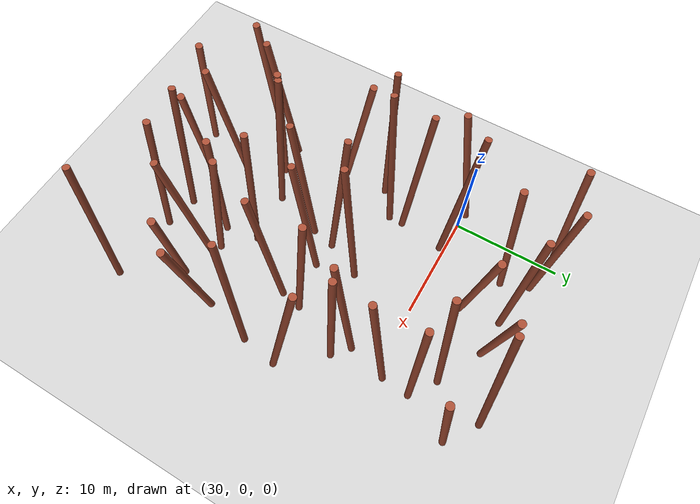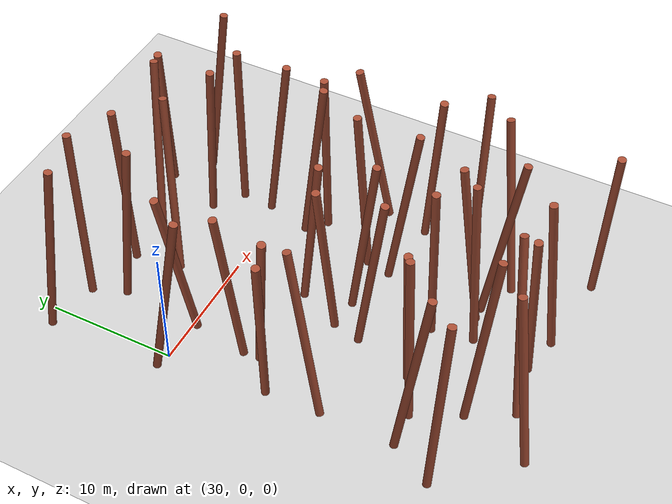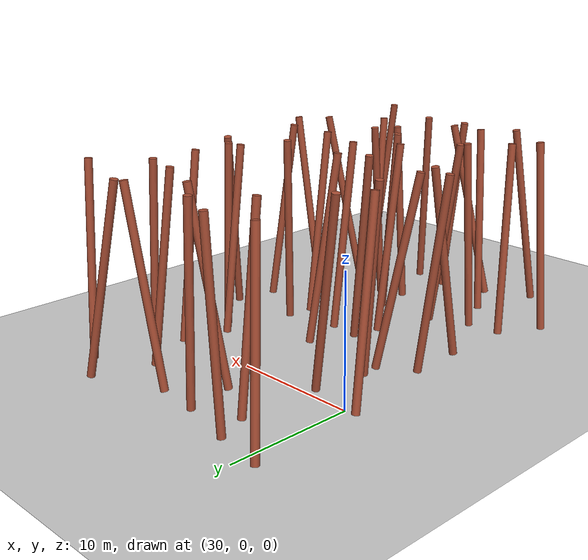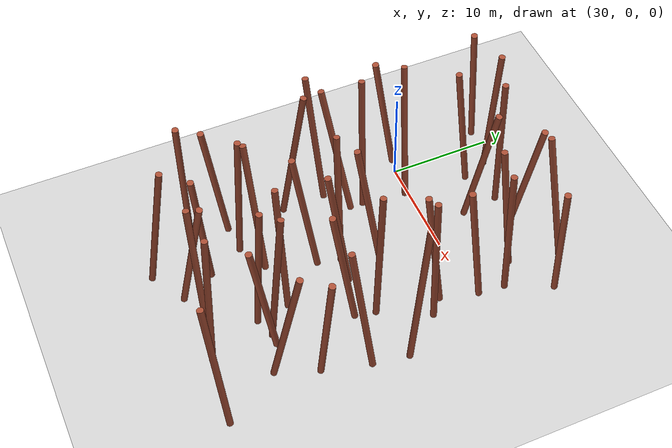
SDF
<sdf version="1.5">
 <world name="default">
  <include><uri>model://sun</uri></include>
  <include><uri>model://ground_plane</uri></include>
  <include><uri>model://asphalt_plane</uri><pose>0 0 -0.000001 0 0 0</pose></include>
  <model name="unit_cylinder_133">
   <pose>29.18419 -21.05023 7.70000 0.00792 0.08452 0.00000</pose>
   <gravity>0 0 0</gravity>
   <link name="link">
    <inertial>
     <mass>100</mass>
     <inertia><ixx>20</ixx><ixy>0</ixy><ixz>0</ixz><iyy>20</iyy><iyz>0</iyz><izz>20</izz></inertia>
    </inertial>
    <collision name="collision">
     <geometry><cylinder><radius>0.300</radius><length>15.000</length></cylinder></geometry>
    </collision>
    <visual name="visual">
     <geometry><cylinder><radius>0.300</radius><length>15.000</length></cylinder></geometry>
     <material>
      <script><name>Gazebo/Bricks</name><uri>file://media/materials/scripts/gazebo.material</uri></script>
     </material>
    </visual>
    <kinematic>1</kinematic>
   </link>
   <static>0</static>
   <plugin name="dynamic_obstacle_motion_133" filename="libobstaclePathPlugin.so">
    <motion_type>proximity_linear</motion_type>
    <direction>-0.999534108 -0.030521569 0.000000000</direction>
    <velocity>0.507010711</velocity>
    <activation_distance>20.000000000</activation_distance>
    <activation_model>iris</activation_model>
    <orientation>false</orientation>
    <marker_enabled>true</marker_enabled>
    <marker_id>133</marker_id>
    <marker_radius>0.300000000</marker_radius>
    <marker_height>15.000000000</marker_height>
    <marker_rate>20.0</marker_rate>
    <marker_topic>/uav_simulator/dynamic_obstacles</marker_topic>
    <marker_frame>map</marker_frame>
   </plugin>
  </model>
  <model name="unit_cylinder_136">
   <pose>29.39386 -8.16290 7.70000 0.04953 -0.11424 0.00000</pose>
   <gravity>0 0 0</gravity>
   <link name="link">
    <inertial>
     <mass>100</mass>
     <inertia><ixx>20</ixx><ixy>0</ixy><ixz>0</ixz><iyy>20</iyy><iyz>0</iyz><izz>20</izz></inertia>
    </inertial>
    <collision name="collision">
     <geometry><cylinder><radius>0.300</radius><length>15.000</length></cylinder></geometry>
    </collision>
    <visual name="visual">
     <geometry><cylinder><radius>0.300</radius><length>15.000</length></cylinder></geometry>
     <material>
      <script><name>Gazebo/Bricks</name><uri>file://media/materials/scripts/gazebo.material</uri></script>
     </material>
    </visual>
   </link>
   <static>1</static>
  </model>
  <model name="unit_cylinder_138">
   <pose>29.09720 -0.91014 7.70000 0.15352 0.04506 0.00000</pose>
   <gravity>0 0 0</gravity>
   <link name="link">
    <inertial>
     <mass>100</mass>
     <inertia><ixx>20</ixx><ixy>0</ixy><ixz>0</ixz><iyy>20</iyy><iyz>0</iyz><izz>20</izz></inertia>
    </inertial>
    <collision name="collision">
     <geometry><cylinder><radius>0.300</radius><length>15.000</length></cylinder></geometry>
    </collision>
    <visual name="visual">
     <geometry><cylinder><radius>0.300</radius><length>15.000</length></cylinder></geometry>
     <material>
      <script><name>Gazebo/Bricks</name><uri>file://media/materials/scripts/gazebo.material</uri></script>
     </material>
    </visual>
   </link>
   <static>1</static>
  </model>
  <model name="unit_cylinder_140">
   <pose>29.12133 8.48860 7.70000 0.09487 0.07396 0.00000</pose>
   <gravity>0 0 0</gravity>
   <link name="link">
    <inertial>
     <mass>100</mass>
     <inertia><ixx>20</ixx><ixy>0</ixy><ixz>0</ixz><iyy>20</iyy><iyz>0</iyz><izz>20</izz></inertia>
    </inertial>
    <collision name="collision">
     <geometry><cylinder><radius>0.300</radius><length>15.000</length></cylinder></geometry>
    </collision>
    <visual name="visual">
     <geometry><cylinder><radius>0.300</radius><length>15.000</length></cylinder></geometry>
     <material>
      <script><name>Gazebo/Bricks</name><uri>file://media/materials/scripts/gazebo.material</uri></script>
     </material>
    </visual>
    <kinematic>1</kinematic>
   </link>
   <static>0</static>
   <plugin name="dynamic_obstacle_motion_140" filename="libobstaclePathPlugin.so">
    <motion_type>proximity_linear</motion_type>
    <direction>-0.758222801 0.651995540 0.000000000</direction>
    <velocity>0.456724164</velocity>
    <activation_distance>20.000000000</activation_distance>
    <activation_model>iris</activation_model>
    <orientation>false</orientation>
    <marker_enabled>true</marker_enabled>
    <marker_id>140</marker_id>
    <marker_radius>0.300000000</marker_radius>
    <marker_height>15.000000000</marker_height>
    <marker_rate>20.0</marker_rate>
    <marker_topic>/uav_simulator/dynamic_obstacles</marker_topic>
    <marker_frame>map</marker_frame>
   </plugin>
  </model>
  <model name="unit_cylinder_147">
   <pose>33.50892 -25.04031 7.70000 -0.14880 0.06397 0.00000</pose>
   <gravity>0 0 0</gravity>
   <link name="link">
    <inertial>
     <mass>100</mass>
     <inertia><ixx>20</ixx><ixy>0</ixy><ixz>0</ixz><iyy>20</iyy><iyz>0</iyz><izz>20</izz></inertia>
    </inertial>
    <collision name="collision">
     <geometry><cylinder><radius>0.300</radius><length>15.000</length></cylinder></geometry>
    </collision>
    <visual name="visual">
     <geometry><cylinder><radius>0.300</radius><length>15.000</length></cylinder></geometry>
     <material>
      <script><name>Gazebo/Bricks</name><uri>file://media/materials/scripts/gazebo.material</uri></script>
     </material>
    </visual>
    <kinematic>1</kinematic>
   </link>
   <static>0</static>
   <plugin name="dynamic_obstacle_motion_147" filename="libobstaclePathPlugin.so">
    <motion_type>proximity_linear</motion_type>
    <direction>0.788737863 0.614729684 0.000000000</direction>
    <velocity>0.640101887</velocity>
    <activation_distance>20.000000000</activation_distance>
    <activation_model>iris</activation_model>
    <orientation>false</orientation>
    <marker_enabled>true</marker_enabled>
    <marker_id>147</marker_id>
    <marker_radius>0.300000000</marker_radius>
    <marker_height>15.000000000</marker_height>
    <marker_rate>20.0</marker_rate>
    <marker_topic>/uav_simulator/dynamic_obstacles</marker_topic>
    <marker_frame>map</marker_frame>
   </plugin>
  </model>
  <model name="unit_cylinder_148">
   <pose>30.73118 -18.48692 7.70000 0.10446 0.04949 0.00000</pose>
   <gravity>0 0 0</gravity>
   <link name="link">
    <inertial>
     <mass>100</mass>
     <inertia><ixx>20</ixx><ixy>0</ixy><ixz>0</ixz><iyy>20</iyy><iyz>0</iyz><izz>20</izz></inertia>
    </inertial>
    <collision name="collision">
     <geometry><cylinder><radius>0.300</radius><length>15.000</length></cylinder></geometry>
    </collision>
    <visual name="visual">
     <geometry><cylinder><radius>0.300</radius><length>15.000</length></cylinder></geometry>
     <material>
      <script><name>Gazebo/Bricks</name><uri>file://media/materials/scripts/gazebo.material</uri></script>
     </material>
    </visual>
   </link>
   <static>1</static>
  </model>
  <model name="unit_cylinder_149">
   <pose>33.24025 -17.14726 7.70000 -0.05416 0.02086 0.00000</pose>
   <gravity>0 0 0</gravity>
   <link name="link">
    <inertial>
     <mass>100</mass>
     <inertia><ixx>20</ixx><ixy>0</ixy><ixz>0</ixz><iyy>20</iyy><iyz>0</iyz><izz>20</izz></inertia>
    </inertial>
    <collision name="collision">
     <geometry><cylinder><radius>0.300</radius><length>15.000</length></cylinder></geometry>
    </collision>
    <visual name="visual">
     <geometry><cylinder><radius>0.300</radius><length>15.000</length></cylinder></geometry>
     <material>
      <script><name>Gazebo/Bricks</name><uri>file://media/materials/scripts/gazebo.material</uri></script>
     </material>
    </visual>
    <kinematic>1</kinematic>
   </link>
   <static>0</static>
   <plugin name="dynamic_obstacle_motion_149" filename="libobstaclePathPlugin.so">
    <motion_type>proximity_linear</motion_type>
    <direction>0.960768522 0.277351487 0.000000000</direction>
    <velocity>0.514663506</velocity>
    <activation_distance>20.000000000</activation_distance>
    <activation_model>iris</activation_model>
    <orientation>false</orientation>
    <marker_enabled>true</marker_enabled>
    <marker_id>149</marker_id>
    <marker_radius>0.300000000</marker_radius>
    <marker_height>15.000000000</marker_height>
    <marker_rate>20.0</marker_rate>
    <marker_topic>/uav_simulator/dynamic_obstacles</marker_topic>
    <marker_frame>map</marker_frame>
   </plugin>
  </model>
  <model name="unit_cylinder_150">
   <pose>30.50218 -10.80302 7.70000 -0.16702 0.02187 0.00000</pose>
   <gravity>0 0 0</gravity>
   <link name="link">
    <inertial>
     <mass>100</mass>
     <inertia><ixx>20</ixx><ixy>0</ixy><ixz>0</ixz><iyy>20</iyy><iyz>0</iyz><izz>20</izz></inertia>
    </inertial>
    <collision name="collision">
     <geometry><cylinder><radius>0.300</radius><length>15.000</length></cylinder></geometry>
    </collision>
    <visual name="visual">
     <geometry><cylinder><radius>0.300</radius><length>15.000</length></cylinder></geometry>
     <material>
      <script><name>Gazebo/Bricks</name><uri>file://media/materials/scripts/gazebo.material</uri></script>
     </material>
    </visual>
   </link>
   <static>1</static>
  </model>
  <model name="unit_cylinder_151">
   <pose>31.59462 -6.90473 7.70000 0.12455 -0.14729 0.00000</pose>
   <gravity>0 0 0</gravity>
   <link name="link">
    <inertial>
     <mass>100</mass>
     <inertia><ixx>20</ixx><ixy>0</ixy><ixz>0</ixz><iyy>20</iyy><iyz>0</iyz><izz>20</izz></inertia>
    </inertial>
    <collision name="collision">
     <geometry><cylinder><radius>0.300</radius><length>15.000</length></cylinder></geometry>
    </collision>
    <visual name="visual">
     <geometry><cylinder><radius>0.300</radius><length>15.000</length></cylinder></geometry>
     <material>
      <script><name>Gazebo/Bricks</name><uri>file://media/materials/scripts/gazebo.material</uri></script>
     </material>
    </visual>
   </link>
   <static>1</static>
  </model>
  <model name="unit_cylinder_152">
   <pose>31.76123 -4.36960 7.70000 -0.04073 -0.11698 0.00000</pose>
   <gravity>0 0 0</gravity>
   <link name="link">
    <inertial>
     <mass>100</mass>
     <inertia><ixx>20</ixx><ixy>0</ixy><ixz>0</ixz><iyy>20</iyy><iyz>0</iyz><izz>20</izz></inertia>
    </inertial>
    <collision name="collision">
     <geometry><cylinder><radius>0.300</radius><length>15.000</length></cylinder></geometry>
    </collision>
    <visual name="visual">
     <geometry><cylinder><radius>0.300</radius><length>15.000</length></cylinder></geometry>
     <material>
      <script><name>Gazebo/Bricks</name><uri>file://media/materials/scripts/gazebo.material</uri></script>
     </material>
    </visual>
    <kinematic>1</kinematic>
   </link>
   <static>0</static>
   <plugin name="dynamic_obstacle_motion_152" filename="libobstaclePathPlugin.so">
    <motion_type>proximity_linear</motion_type>
    <direction>0.980765889 -0.195187782 0.000000000</direction>
    <velocity>0.693788750</velocity>
    <activation_distance>20.000000000</activation_distance>
    <activation_model>iris</activation_model>
    <orientation>false</orientation>
    <marker_enabled>true</marker_enabled>
    <marker_id>152</marker_id>
    <marker_radius>0.300000000</marker_radius>
    <marker_height>15.000000000</marker_height>
    <marker_rate>20.0</marker_rate>
    <marker_topic>/uav_simulator/dynamic_obstacles</marker_topic>
    <marker_frame>map</marker_frame>
   </plugin>
  </model>
  <model name="unit_cylinder_153">
   <pose>31.96209 -0.11294 7.70000 -0.04189 -0.16999 0.00000</pose>
   <gravity>0 0 0</gravity>
   <link name="link">
    <inertial>
     <mass>100</mass>
     <inertia><ixx>20</ixx><ixy>0</ixy><ixz>0</ixz><iyy>20</iyy><iyz>0</iyz><izz>20</izz></inertia>
    </inertial>
    <collision name="collision">
     <geometry><cylinder><radius>0.300</radius><length>15.000</length></cylinder></geometry>
    </collision>
    <visual name="visual">
     <geometry><cylinder><radius>0.300</radius><length>15.000</length></cylinder></geometry>
     <material>
      <script><name>Gazebo/Bricks</name><uri>file://media/materials/scripts/gazebo.material</uri></script>
     </material>
    </visual>
    <kinematic>1</kinematic>
   </link>
   <static>0</static>
   <plugin name="dynamic_obstacle_motion_153" filename="libobstaclePathPlugin.so">
    <motion_type>proximity_linear</motion_type>
    <direction>-0.947588219 -0.319494237 0.000000000</direction>
    <velocity>0.815120720</velocity>
    <activation_distance>20.000000000</activation_distance>
    <activation_model>iris</activation_model>
    <orientation>false</orientation>
    <marker_enabled>true</marker_enabled>
    <marker_id>153</marker_id>
    <marker_radius>0.300000000</marker_radius>
    <marker_height>15.000000000</marker_height>
    <marker_rate>20.0</marker_rate>
    <marker_topic>/uav_simulator/dynamic_obstacles</marker_topic>
    <marker_frame>map</marker_frame>
   </plugin>
  </model>
  <model name="unit_cylinder_154">
   <pose>33.61997 5.10161 7.70000 0.11441 -0.00131 0.00000</pose>
   <gravity>0 0 0</gravity>
   <link name="link">
    <inertial>
     <mass>100</mass>
     <inertia><ixx>20</ixx><ixy>0</ixy><ixz>0</ixz><iyy>20</iyy><iyz>0</iyz><izz>20</izz></inertia>
    </inertial>
    <collision name="collision">
     <geometry><cylinder><radius>0.300</radius><length>15.000</length></cylinder></geometry>
    </collision>
    <visual name="visual">
     <geometry><cylinder><radius>0.300</radius><length>15.000</length></cylinder></geometry>
     <material>
      <script><name>Gazebo/Bricks</name><uri>file://media/materials/scripts/gazebo.material</uri></script>
     </material>
    </visual>
   </link>
   <static>1</static>
  </model>
  <model name="unit_cylinder_155">
   <pose>32.93735 8.61433 7.70000 -0.02237 0.03553 0.00000</pose>
   <gravity>0 0 0</gravity>
   <link name="link">
    <inertial>
     <mass>100</mass>
     <inertia><ixx>20</ixx><ixy>0</ixy><ixz>0</ixz><iyy>20</iyy><iyz>0</iyz><izz>20</izz></inertia>
    </inertial>
    <collision name="collision">
     <geometry><cylinder><radius>0.300</radius><length>15.000</length></cylinder></geometry>
    </collision>
    <visual name="visual">
     <geometry><cylinder><radius>0.300</radius><length>15.000</length></cylinder></geometry>
     <material>
      <script><name>Gazebo/Bricks</name><uri>file://media/materials/scripts/gazebo.material</uri></script>
     </material>
    </visual>
    <kinematic>1</kinematic>
   </link>
   <static>0</static>
   <plugin name="dynamic_obstacle_motion_155" filename="libobstaclePathPlugin.so">
    <motion_type>proximity_linear</motion_type>
    <direction>-0.075295561 0.997161260 0.000000000</direction>
    <velocity>1.976022706</velocity>
    <activation_distance>20.000000000</activation_distance>
    <activation_model>iris</activation_model>
    <orientation>false</orientation>
    <marker_enabled>true</marker_enabled>
    <marker_id>155</marker_id>
    <marker_radius>0.300000000</marker_radius>
    <marker_height>15.000000000</marker_height>
    <marker_rate>20.0</marker_rate>
    <marker_topic>/uav_simulator/dynamic_obstacles</marker_topic>
    <marker_frame>map</marker_frame>
   </plugin>
  </model>
  <model name="unit_cylinder_161">
   <pose>37.68272 -23.15604 7.70000 -0.14143 0.16430 0.00000</pose>
   <gravity>0 0 0</gravity>
   <link name="link">
    <inertial>
     <mass>100</mass>
     <inertia><ixx>20</ixx><ixy>0</ixy><ixz>0</ixz><iyy>20</iyy><iyz>0</iyz><izz>20</izz></inertia>
    </inertial>
    <collision name="collision">
     <geometry><cylinder><radius>0.300</radius><length>15.000</length></cylinder></geometry>
    </collision>
    <visual name="visual">
     <geometry><cylinder><radius>0.300</radius><length>15.000</length></cylinder></geometry>
     <material>
      <script><name>Gazebo/Bricks</name><uri>file://media/materials/scripts/gazebo.material</uri></script>
     </material>
    </visual>
    <kinematic>1</kinematic>
   </link>
   <static>0</static>
   <plugin name="dynamic_obstacle_motion_161" filename="libobstaclePathPlugin.so">
    <motion_type>proximity_linear</motion_type>
    <direction>0.570303099 0.821434340 0.000000000</direction>
    <velocity>0.744397793</velocity>
    <activation_distance>20.000000000</activation_distance>
    <activation_model>iris</activation_model>
    <orientation>false</orientation>
    <marker_enabled>true</marker_enabled>
    <marker_id>161</marker_id>
    <marker_radius>0.300000000</marker_radius>
    <marker_height>15.000000000</marker_height>
    <marker_rate>20.0</marker_rate>
    <marker_topic>/uav_simulator/dynamic_obstacles</marker_topic>
    <marker_frame>map</marker_frame>
   </plugin>
  </model>
  <model name="unit_cylinder_162">
   <pose>35.37421 -21.40528 7.70000 0.05828 0.07880 0.00000</pose>
   <gravity>0 0 0</gravity>
   <link name="link">
    <inertial>
     <mass>100</mass>
     <inertia><ixx>20</ixx><ixy>0</ixy><ixz>0</ixz><iyy>20</iyy><iyz>0</iyz><izz>20</izz></inertia>
    </inertial>
    <collision name="collision">
     <geometry><cylinder><radius>0.300</radius><length>15.000</length></cylinder></geometry>
    </collision>
    <visual name="visual">
     <geometry><cylinder><radius>0.300</radius><length>15.000</length></cylinder></geometry>
     <material>
      <script><name>Gazebo/Bricks</name><uri>file://media/materials/scripts/gazebo.material</uri></script>
     </material>
    </visual>
    <kinematic>1</kinematic>
   </link>
   <static>0</static>
   <plugin name="dynamic_obstacle_motion_162" filename="libobstaclePathPlugin.so">
    <motion_type>proximity_linear</motion_type>
    <direction>0.721161307 0.692767182 0.000000000</direction>
    <velocity>0.832326323</velocity>
    <activation_distance>20.000000000</activation_distance>
    <activation_model>iris</activation_model>
    <orientation>false</orientation>
    <marker_enabled>true</marker_enabled>
    <marker_id>162</marker_id>
    <marker_radius>0.300000000</marker_radius>
    <marker_height>15.000000000</marker_height>
    <marker_rate>20.0</marker_rate>
    <marker_topic>/uav_simulator/dynamic_obstacles</marker_topic>
    <marker_frame>map</marker_frame>
   </plugin>
  </model>
  <model name="unit_cylinder_163">
   <pose>34.92122 -16.25209 7.70000 0.02206 -0.14996 0.00000</pose>
   <gravity>0 0 0</gravity>
   <link name="link">
    <inertial>
     <mass>100</mass>
     <inertia><ixx>20</ixx><ixy>0</ixy><ixz>0</ixz><iyy>20</iyy><iyz>0</iyz><izz>20</izz></inertia>
    </inertial>
    <collision name="collision">
     <geometry><cylinder><radius>0.300</radius><length>15.000</length></cylinder></geometry>
    </collision>
    <visual name="visual">
     <geometry><cylinder><radius>0.300</radius><length>15.000</length></cylinder></geometry>
     <material>
      <script><name>Gazebo/Bricks</name><uri>file://media/materials/scripts/gazebo.material</uri></script>
     </material>
    </visual>
   </link>
   <static>1</static>
  </model>
  <model name="unit_cylinder_164">
   <pose>37.29233 -12.35104 7.70000 0.11934 -0.02861 0.00000</pose>
   <gravity>0 0 0</gravity>
   <link name="link">
    <inertial>
     <mass>100</mass>
     <inertia><ixx>20</ixx><ixy>0</ixy><ixz>0</ixz><iyy>20</iyy><iyz>0</iyz><izz>20</izz></inertia>
    </inertial>
    <collision name="collision">
     <geometry><cylinder><radius>0.300</radius><length>15.000</length></cylinder></geometry>
    </collision>
    <visual name="visual">
     <geometry><cylinder><radius>0.300</radius><length>15.000</length></cylinder></geometry>
     <material>
      <script><name>Gazebo/Bricks</name><uri>file://media/materials/scripts/gazebo.material</uri></script>
     </material>
    </visual>
   </link>
   <static>1</static>
  </model>
  <model name="unit_cylinder_165">
   <pose>37.06194 -9.01263 7.70000 -0.03754 -0.12730 0.00000</pose>
   <gravity>0 0 0</gravity>
   <link name="link">
    <inertial>
     <mass>100</mass>
     <inertia><ixx>20</ixx><ixy>0</ixy><ixz>0</ixz><iyy>20</iyy><iyz>0</iyz><izz>20</izz></inertia>
    </inertial>
    <collision name="collision">
     <geometry><cylinder><radius>0.300</radius><length>15.000</length></cylinder></geometry>
    </collision>
    <visual name="visual">
     <geometry><cylinder><radius>0.300</radius><length>15.000</length></cylinder></geometry>
     <material>
      <script><name>Gazebo/Bricks</name><uri>file://media/materials/scripts/gazebo.material</uri></script>
     </material>
    </visual>
    <kinematic>1</kinematic>
   </link>
   <static>0</static>
   <plugin name="dynamic_obstacle_motion_165" filename="libobstaclePathPlugin.so">
    <motion_type>proximity_linear</motion_type>
    <direction>-0.677980190 -0.735080173 -0.000000000</direction>
    <velocity>0.557534357</velocity>
    <activation_distance>20.000000000</activation_distance>
    <activation_model>iris</activation_model>
    <orientation>false</orientation>
    <marker_enabled>true</marker_enabled>
    <marker_id>165</marker_id>
    <marker_radius>0.300000000</marker_radius>
    <marker_height>15.000000000</marker_height>
    <marker_rate>20.0</marker_rate>
    <marker_topic>/uav_simulator/dynamic_obstacles</marker_topic>
    <marker_frame>map</marker_frame>
   </plugin>
  </model>
  <model name="unit_cylinder_166">
   <pose>36.84404 7.39793 7.70000 0.00147 -0.04219 0.00000</pose>
   <gravity>0 0 0</gravity>
   <link name="link">
    <inertial>
     <mass>100</mass>
     <inertia><ixx>20</ixx><ixy>0</ixy><ixz>0</ixz><iyy>20</iyy><iyz>0</iyz><izz>20</izz></inertia>
    </inertial>
    <collision name="collision">
     <geometry><cylinder><radius>0.300</radius><length>15.000</length></cylinder></geometry>
    </collision>
    <visual name="visual">
     <geometry><cylinder><radius>0.300</radius><length>15.000</length></cylinder></geometry>
     <material>
      <script><name>Gazebo/Bricks</name><uri>file://media/materials/scripts/gazebo.material</uri></script>
     </material>
    </visual>
   </link>
   <static>1</static>
  </model>
  <model name="unit_cylinder_171">
   <pose>39.64489 -23.26386 7.70000 -0.01585 -0.13621 0.00000</pose>
   <gravity>0 0 0</gravity>
   <link name="link">
    <inertial>
     <mass>100</mass>
     <inertia><ixx>20</ixx><ixy>0</ixy><ixz>0</ixz><iyy>20</iyy><iyz>0</iyz><izz>20</izz></inertia>
    </inertial>
    <collision name="collision">
     <geometry><cylinder><radius>0.300</radius><length>15.000</length></cylinder></geometry>
    </collision>
    <visual name="visual">
     <geometry><cylinder><radius>0.300</radius><length>15.000</length></cylinder></geometry>
     <material>
      <script><name>Gazebo/Bricks</name><uri>file://media/materials/scripts/gazebo.material</uri></script>
     </material>
    </visual>
   </link>
   <static>1</static>
  </model>
  <model name="unit_cylinder_172">
   <pose>41.39487 -18.36627 7.70000 -0.07112 0.00383 0.00000</pose>
   <gravity>0 0 0</gravity>
   <link name="link">
    <inertial>
     <mass>100</mass>
     <inertia><ixx>20</ixx><ixy>0</ixy><ixz>0</ixz><iyy>20</iyy><iyz>0</iyz><izz>20</izz></inertia>
    </inertial>
    <collision name="collision">
     <geometry><cylinder><radius>0.300</radius><length>15.000</length></cylinder></geometry>
    </collision>
    <visual name="visual">
     <geometry><cylinder><radius>0.300</radius><length>15.000</length></cylinder></geometry>
     <material>
      <script><name>Gazebo/Bricks</name><uri>file://media/materials/scripts/gazebo.material</uri></script>
     </material>
    </visual>
   </link>
   <static>1</static>
  </model>
  <model name="unit_cylinder_173">
   <pose>40.20876 -15.74651 7.70000 -0.00099 -0.08948 0.00000</pose>
   <gravity>0 0 0</gravity>
   <link name="link">
    <inertial>
     <mass>100</mass>
     <inertia><ixx>20</ixx><ixy>0</ixy><ixz>0</ixz><iyy>20</iyy><iyz>0</iyz><izz>20</izz></inertia>
    </inertial>
    <collision name="collision">
     <geometry><cylinder><radius>0.300</radius><length>15.000</length></cylinder></geometry>
    </collision>
    <visual name="visual">
     <geometry><cylinder><radius>0.300</radius><length>15.000</length></cylinder></geometry>
     <material>
      <script><name>Gazebo/Bricks</name><uri>file://media/materials/scripts/gazebo.material</uri></script>
     </material>
    </visual>
   </link>
   <static>1</static>
  </model>
  <model name="unit_cylinder_174">
   <pose>40.26634 -10.35666 7.70000 0.11355 -0.02328 0.00000</pose>
   <gravity>0 0 0</gravity>
   <link name="link">
    <inertial>
     <mass>100</mass>
     <inertia><ixx>20</ixx><ixy>0</ixy><ixz>0</ixz><iyy>20</iyy><iyz>0</iyz><izz>20</izz></inertia>
    </inertial>
    <collision name="collision">
     <geometry><cylinder><radius>0.300</radius><length>15.000</length></cylinder></geometry>
    </collision>
    <visual name="visual">
     <geometry><cylinder><radius>0.300</radius><length>15.000</length></cylinder></geometry>
     <material>
      <script><name>Gazebo/Bricks</name><uri>file://media/materials/scripts/gazebo.material</uri></script>
     </material>
    </visual>
    <kinematic>1</kinematic>
   </link>
   <static>0</static>
   <plugin name="dynamic_obstacle_motion_174" filename="libobstaclePathPlugin.so">
    <motion_type>proximity_linear</motion_type>
    <direction>0.966070771 -0.258277498 0.000000000</direction>
    <velocity>0.714217146</velocity>
    <activation_distance>20.000000000</activation_distance>
    <activation_model>iris</activation_model>
    <orientation>false</orientation>
    <marker_enabled>true</marker_enabled>
    <marker_id>174</marker_id>
    <marker_radius>0.300000000</marker_radius>
    <marker_height>15.000000000</marker_height>
    <marker_rate>20.0</marker_rate>
    <marker_topic>/uav_simulator/dynamic_obstacles</marker_topic>
    <marker_frame>map</marker_frame>
   </plugin>
  </model>
  <model name="unit_cylinder_175">
   <pose>38.96004 -6.85404 7.70000 0.12059 -0.08186 0.00000</pose>
   <gravity>0 0 0</gravity>
   <link name="link">
    <inertial>
     <mass>100</mass>
     <inertia><ixx>20</ixx><ixy>0</ixy><ixz>0</ixz><iyy>20</iyy><iyz>0</iyz><izz>20</izz></inertia>
    </inertial>
    <collision name="collision">
     <geometry><cylinder><radius>0.300</radius><length>15.000</length></cylinder></geometry>
    </collision>
    <visual name="visual">
     <geometry><cylinder><radius>0.300</radius><length>15.000</length></cylinder></geometry>
     <material>
      <script><name>Gazebo/Bricks</name><uri>file://media/materials/scripts/gazebo.material</uri></script>
     </material>
    </visual>
   </link>
   <static>1</static>
  </model>
  <model name="unit_cylinder_176">
   <pose>38.60238 4.44707 7.70000 -0.09204 0.12935 0.00000</pose>
   <gravity>0 0 0</gravity>
   <link name="link">
    <inertial>
     <mass>100</mass>
     <inertia><ixx>20</ixx><ixy>0</ixy><ixz>0</ixz><iyy>20</iyy><iyz>0</iyz><izz>20</izz></inertia>
    </inertial>
    <collision name="collision">
     <geometry><cylinder><radius>0.300</radius><length>15.000</length></cylinder></geometry>
    </collision>
    <visual name="visual">
     <geometry><cylinder><radius>0.300</radius><length>15.000</length></cylinder></geometry>
     <material>
      <script><name>Gazebo/Bricks</name><uri>file://media/materials/scripts/gazebo.material</uri></script>
     </material>
    </visual>
   </link>
   <static>1</static>
  </model>
  <model name="unit_cylinder_177">
   <pose>41.63861 7.51164 7.70000 -0.05232 0.15096 0.00000</pose>
   <gravity>0 0 0</gravity>
   <link name="link">
    <inertial>
     <mass>100</mass>
     <inertia><ixx>20</ixx><ixy>0</ixy><ixz>0</ixz><iyy>20</iyy><iyz>0</iyz><izz>20</izz></inertia>
    </inertial>
    <collision name="collision">
     <geometry><cylinder><radius>0.300</radius><length>15.000</length></cylinder></geometry>
    </collision>
    <visual name="visual">
     <geometry><cylinder><radius>0.300</radius><length>15.000</length></cylinder></geometry>
     <material>
      <script><name>Gazebo/Bricks</name><uri>file://media/materials/scripts/gazebo.material</uri></script>
     </material>
    </visual>
   </link>
   <static>1</static>
  </model>
  <model name="unit_cylinder_184">
   <pose>42.93753 -23.41553 7.70000 -0.08092 -0.09932 0.00000</pose>
   <gravity>0 0 0</gravity>
   <link name="link">
    <inertial>
     <mass>100</mass>
     <inertia><ixx>20</ixx><ixy>0</ixy><ixz>0</ixz><iyy>20</iyy><iyz>0</iyz><izz>20</izz></inertia>
    </inertial>
    <collision name="collision">
     <geometry><cylinder><radius>0.300</radius><length>15.000</length></cylinder></geometry>
    </collision>
    <visual name="visual">
     <geometry><cylinder><radius>0.300</radius><length>15.000</length></cylinder></geometry>
     <material>
      <script><name>Gazebo/Bricks</name><uri>file://media/materials/scripts/gazebo.material</uri></script>
     </material>
    </visual>
    <kinematic>1</kinematic>
   </link>
   <static>0</static>
   <plugin name="dynamic_obstacle_motion_184" filename="libobstaclePathPlugin.so">
    <motion_type>proximity_linear</motion_type>
    <direction>-0.737001306 0.675891319 0.000000000</direction>
    <velocity>0.622014358</velocity>
    <activation_distance>20.000000000</activation_distance>
    <activation_model>iris</activation_model>
    <orientation>false</orientation>
    <marker_enabled>true</marker_enabled>
    <marker_id>184</marker_id>
    <marker_radius>0.300000000</marker_radius>
    <marker_height>15.000000000</marker_height>
    <marker_rate>20.0</marker_rate>
    <marker_topic>/uav_simulator/dynamic_obstacles</marker_topic>
    <marker_frame>map</marker_frame>
   </plugin>
  </model>
  <model name="unit_cylinder_185">
   <pose>44.58659 -19.11435 7.70000 0.12158 0.03498 0.00000</pose>
   <gravity>0 0 0</gravity>
   <link name="link">
    <inertial>
     <mass>100</mass>
     <inertia><ixx>20</ixx><ixy>0</ixy><ixz>0</ixz><iyy>20</iyy><iyz>0</iyz><izz>20</izz></inertia>
    </inertial>
    <collision name="collision">
     <geometry><cylinder><radius>0.300</radius><length>15.000</length></cylinder></geometry>
    </collision>
    <visual name="visual">
     <geometry><cylinder><radius>0.300</radius><length>15.000</length></cylinder></geometry>
     <material>
      <script><name>Gazebo/Bricks</name><uri>file://media/materials/scripts/gazebo.material</uri></script>
     </material>
    </visual>
    <kinematic>1</kinematic>
   </link>
   <static>0</static>
   <plugin name="dynamic_obstacle_motion_185" filename="libobstaclePathPlugin.so">
    <motion_type>proximity_linear</motion_type>
    <direction>0.427144103 0.904183563 -0.000000000</direction>
    <velocity>1.423492215</velocity>
    <activation_distance>20.000000000</activation_distance>
    <activation_model>iris</activation_model>
    <orientation>false</orientation>
    <marker_enabled>true</marker_enabled>
    <marker_id>185</marker_id>
    <marker_radius>0.300000000</marker_radius>
    <marker_height>15.000000000</marker_height>
    <marker_rate>20.0</marker_rate>
    <marker_topic>/uav_simulator/dynamic_obstacles</marker_topic>
    <marker_frame>map</marker_frame>
   </plugin>
  </model>
  <model name="unit_cylinder_186">
   <pose>42.96337 -17.32659 7.70000 -0.12297 -0.04682 0.00000</pose>
   <gravity>0 0 0</gravity>
   <link name="link">
    <inertial>
     <mass>100</mass>
     <inertia><ixx>20</ixx><ixy>0</ixy><ixz>0</ixz><iyy>20</iyy><iyz>0</iyz><izz>20</izz></inertia>
    </inertial>
    <collision name="collision">
     <geometry><cylinder><radius>0.300</radius><length>15.000</length></cylinder></geometry>
    </collision>
    <visual name="visual">
     <geometry><cylinder><radius>0.300</radius><length>15.000</length></cylinder></geometry>
     <material>
      <script><name>Gazebo/Bricks</name><uri>file://media/materials/scripts/gazebo.material</uri></script>
     </material>
    </visual>
   </link>
   <static>1</static>
  </model>
  <model name="unit_cylinder_187">
   <pose>44.26414 -11.57520 7.70000 0.12533 -0.01107 0.00000</pose>
   <gravity>0 0 0</gravity>
   <link name="link">
    <inertial>
     <mass>100</mass>
     <inertia><ixx>20</ixx><ixy>0</ixy><ixz>0</ixz><iyy>20</iyy><iyz>0</iyz><izz>20</izz></inertia>
    </inertial>
    <collision name="collision">
     <geometry><cylinder><radius>0.300</radius><length>15.000</length></cylinder></geometry>
    </collision>
    <visual name="visual">
     <geometry><cylinder><radius>0.300</radius><length>15.000</length></cylinder></geometry>
     <material>
      <script><name>Gazebo/Bricks</name><uri>file://media/materials/scripts/gazebo.material</uri></script>
     </material>
    </visual>
   </link>
   <static>1</static>
  </model>
  <model name="unit_cylinder_188">
   <pose>44.34761 -8.29255 7.70000 -0.05695 -0.05552 0.00000</pose>
   <gravity>0 0 0</gravity>
   <link name="link">
    <inertial>
     <mass>100</mass>
     <inertia><ixx>20</ixx><ixy>0</ixy><ixz>0</ixz><iyy>20</iyy><iyz>0</iyz><izz>20</izz></inertia>
    </inertial>
    <collision name="collision">
     <geometry><cylinder><radius>0.300</radius><length>15.000</length></cylinder></geometry>
    </collision>
    <visual name="visual">
     <geometry><cylinder><radius>0.300</radius><length>15.000</length></cylinder></geometry>
     <material>
      <script><name>Gazebo/Bricks</name><uri>file://media/materials/scripts/gazebo.material</uri></script>
     </material>
    </visual>
   </link>
   <static>1</static>
  </model>
  <model name="unit_cylinder_189">
   <pose>45.57224 -3.61172 7.70000 0.11332 -0.01595 0.00000</pose>
   <gravity>0 0 0</gravity>
   <link name="link">
    <inertial>
     <mass>100</mass>
     <inertia><ixx>20</ixx><ixy>0</ixy><ixz>0</ixz><iyy>20</iyy><iyz>0</iyz><izz>20</izz></inertia>
    </inertial>
    <collision name="collision">
     <geometry><cylinder><radius>0.300</radius><length>15.000</length></cylinder></geometry>
    </collision>
    <visual name="visual">
     <geometry><cylinder><radius>0.300</radius><length>15.000</length></cylinder></geometry>
     <material>
      <script><name>Gazebo/Bricks</name><uri>file://media/materials/scripts/gazebo.material</uri></script>
     </material>
    </visual>
    <kinematic>1</kinematic>
   </link>
   <static>0</static>
   <plugin name="dynamic_obstacle_motion_189" filename="libobstaclePathPlugin.so">
    <motion_type>proximity_linear</motion_type>
    <direction>0.958730731 -0.284315645 -0.000000000</direction>
    <velocity>0.805424513</velocity>
    <activation_distance>20.000000000</activation_distance>
    <activation_model>iris</activation_model>
    <orientation>false</orientation>
    <marker_enabled>true</marker_enabled>
    <marker_id>189</marker_id>
    <marker_radius>0.300000000</marker_radius>
    <marker_height>15.000000000</marker_height>
    <marker_rate>20.0</marker_rate>
    <marker_topic>/uav_simulator/dynamic_obstacles</marker_topic>
    <marker_frame>map</marker_frame>
   </plugin>
  </model>
  <model name="unit_cylinder_190">
   <pose>43.99991 4.29063 7.70000 0.08953 -0.07480 0.00000</pose>
   <gravity>0 0 0</gravity>
   <link name="link">
    <inertial>
     <mass>100</mass>
     <inertia><ixx>20</ixx><ixy>0</ixy><ixz>0</ixz><iyy>20</iyy><iyz>0</iyz><izz>20</izz></inertia>
    </inertial>
    <collision name="collision">
     <geometry><cylinder><radius>0.300</radius><length>15.000</length></cylinder></geometry>
    </collision>
    <visual name="visual">
     <geometry><cylinder><radius>0.300</radius><length>15.000</length></cylinder></geometry>
     <material>
      <script><name>Gazebo/Bricks</name><uri>file://media/materials/scripts/gazebo.material</uri></script>
     </material>
    </visual>
   </link>
   <static>1</static>
  </model>
  <model name="unit_cylinder_191">
   <pose>44.82993 8.79181 7.70000 0.09349 -0.16839 0.00000</pose>
   <gravity>0 0 0</gravity>
   <link name="link">
    <inertial>
     <mass>100</mass>
     <inertia><ixx>20</ixx><ixy>0</ixy><ixz>0</ixz><iyy>20</iyy><iyz>0</iyz><izz>20</izz></inertia>
    </inertial>
    <collision name="collision">
     <geometry><cylinder><radius>0.300</radius><length>15.000</length></cylinder></geometry>
    </collision>
    <visual name="visual">
     <geometry><cylinder><radius>0.300</radius><length>15.000</length></cylinder></geometry>
     <material>
      <script><name>Gazebo/Bricks</name><uri>file://media/materials/scripts/gazebo.material</uri></script>
     </material>
    </visual>
   </link>
   <static>1</static>
  </model>
  <model name="unit_cylinder_198">
   <pose>49.26998 -25.03536 7.70000 0.03554 -0.12339 0.00000</pose>
   <gravity>0 0 0</gravity>
   <link name="link">
    <inertial>
     <mass>100</mass>
     <inertia><ixx>20</ixx><ixy>0</ixy><ixz>0</ixz><iyy>20</iyy><iyz>0</iyz><izz>20</izz></inertia>
    </inertial>
    <collision name="collision">
     <geometry><cylinder><radius>0.300</radius><length>15.000</length></cylinder></geometry>
    </collision>
    <visual name="visual">
     <geometry><cylinder><radius>0.300</radius><length>15.000</length></cylinder></geometry>
     <material>
      <script><name>Gazebo/Bricks</name><uri>file://media/materials/scripts/gazebo.material</uri></script>
     </material>
    </visual>
    <kinematic>1</kinematic>
   </link>
   <static>0</static>
   <plugin name="dynamic_obstacle_motion_198" filename="libobstaclePathPlugin.so">
    <motion_type>proximity_linear</motion_type>
    <direction>0.800292120 0.599610309 0.000000000</direction>
    <velocity>1.692185238</velocity>
    <activation_distance>20.000000000</activation_distance>
    <activation_model>iris</activation_model>
    <orientation>false</orientation>
    <marker_enabled>true</marker_enabled>
    <marker_id>198</marker_id>
    <marker_radius>0.300000000</marker_radius>
    <marker_height>15.000000000</marker_height>
    <marker_rate>20.0</marker_rate>
    <marker_topic>/uav_simulator/dynamic_obstacles</marker_topic>
    <marker_frame>map</marker_frame>
   </plugin>
  </model>
  <model name="unit_cylinder_199">
   <pose>47.90582 -18.39575 7.70000 -0.15610 0.11538 0.00000</pose>
   <gravity>0 0 0</gravity>
   <link name="link">
    <inertial>
     <mass>100</mass>
     <inertia><ixx>20</ixx><ixy>0</ixy><ixz>0</ixz><iyy>20</iyy><iyz>0</iyz><izz>20</izz></inertia>
    </inertial>
    <collision name="collision">
     <geometry><cylinder><radius>0.300</radius><length>15.000</length></cylinder></geometry>
    </collision>
    <visual name="visual">
     <geometry><cylinder><radius>0.300</radius><length>15.000</length></cylinder></geometry>
     <material>
      <script><name>Gazebo/Bricks</name><uri>file://media/materials/scripts/gazebo.material</uri></script>
     </material>
    </visual>
   </link>
   <static>1</static>
  </model>
  <model name="unit_cylinder_200">
   <pose>49.40291 -15.41809 7.70000 -0.03589 0.12757 0.00000</pose>
   <gravity>0 0 0</gravity>
   <link name="link">
    <inertial>
     <mass>100</mass>
     <inertia><ixx>20</ixx><ixy>0</ixy><ixz>0</ixz><iyy>20</iyy><iyz>0</iyz><izz>20</izz></inertia>
    </inertial>
    <collision name="collision">
     <geometry><cylinder><radius>0.300</radius><length>15.000</length></cylinder></geometry>
    </collision>
    <visual name="visual">
     <geometry><cylinder><radius>0.300</radius><length>15.000</length></cylinder></geometry>
     <material>
      <script><name>Gazebo/Bricks</name><uri>file://media/materials/scripts/gazebo.material</uri></script>
     </material>
    </visual>
   </link>
   <static>1</static>
  </model>
  <model name="unit_cylinder_201">
   <pose>48.90412 -11.89387 7.70000 0.08518 -0.10438 0.00000</pose>
   <gravity>0 0 0</gravity>
   <link name="link">
    <inertial>
     <mass>100</mass>
     <inertia><ixx>20</ixx><ixy>0</ixy><ixz>0</ixz><iyy>20</iyy><iyz>0</iyz><izz>20</izz></inertia>
    </inertial>
    <collision name="collision">
     <geometry><cylinder><radius>0.300</radius><length>15.000</length></cylinder></geometry>
    </collision>
    <visual name="visual">
     <geometry><cylinder><radius>0.300</radius><length>15.000</length></cylinder></geometry>
     <material>
      <script><name>Gazebo/Bricks</name><uri>file://media/materials/scripts/gazebo.material</uri></script>
     </material>
    </visual>
    <kinematic>1</kinematic>
   </link>
   <static>0</static>
   <plugin name="dynamic_obstacle_motion_201" filename="libobstaclePathPlugin.so">
    <motion_type>proximity_linear</motion_type>
    <direction>-0.137729969 0.990469816 0.000000000</direction>
    <velocity>0.874754067</velocity>
    <activation_distance>20.000000000</activation_distance>
    <activation_model>iris</activation_model>
    <orientation>false</orientation>
    <marker_enabled>true</marker_enabled>
    <marker_id>201</marker_id>
    <marker_radius>0.300000000</marker_radius>
    <marker_height>15.000000000</marker_height>
    <marker_rate>20.0</marker_rate>
    <marker_topic>/uav_simulator/dynamic_obstacles</marker_topic>
    <marker_frame>map</marker_frame>
   </plugin>
  </model>
  <model name="unit_cylinder_202">
   <pose>49.41210 -6.84000 7.70000 -0.14493 -0.11472 0.00000</pose>
   <gravity>0 0 0</gravity>
   <link name="link">
    <inertial>
     <mass>100</mass>
     <inertia><ixx>20</ixx><ixy>0</ixy><ixz>0</ixz><iyy>20</iyy><iyz>0</iyz><izz>20</izz></inertia>
    </inertial>
    <collision name="collision">
     <geometry><cylinder><radius>0.300</radius><length>15.000</length></cylinder></geometry>
    </collision>
    <visual name="visual">
     <geometry><cylinder><radius>0.300</radius><length>15.000</length></cylinder></geometry>
     <material>
      <script><name>Gazebo/Bricks</name><uri>file://media/materials/scripts/gazebo.material</uri></script>
     </material>
    </visual>
    <kinematic>1</kinematic>
   </link>
   <static>0</static>
   <plugin name="dynamic_obstacle_motion_202" filename="libobstaclePathPlugin.so">
    <motion_type>proximity_linear</motion_type>
    <direction>0.875955486 0.482391943 -0.000000000</direction>
    <velocity>1.018620817</velocity>
    <activation_distance>20.000000000</activation_distance>
    <activation_model>iris</activation_model>
    <orientation>false</orientation>
    <marker_enabled>true</marker_enabled>
    <marker_id>202</marker_id>
    <marker_radius>0.300000000</marker_radius>
    <marker_height>15.000000000</marker_height>
    <marker_rate>20.0</marker_rate>
    <marker_topic>/uav_simulator/dynamic_obstacles</marker_topic>
    <marker_frame>map</marker_frame>
   </plugin>
  </model>
  <model name="unit_cylinder_203">
   <pose>46.73317 -4.04583 7.70000 -0.00189 -0.04966 0.00000</pose>
   <gravity>0 0 0</gravity>
   <link name="link">
    <inertial>
     <mass>100</mass>
     <inertia><ixx>20</ixx><ixy>0</ixy><ixz>0</ixz><iyy>20</iyy><iyz>0</iyz><izz>20</izz></inertia>
    </inertial>
    <collision name="collision">
     <geometry><cylinder><radius>0.300</radius><length>15.000</length></cylinder></geometry>
    </collision>
    <visual name="visual">
     <geometry><cylinder><radius>0.300</radius><length>15.000</length></cylinder></geometry>
     <material>
      <script><name>Gazebo/Bricks</name><uri>file://media/materials/scripts/gazebo.material</uri></script>
     </material>
    </visual>
    <kinematic>1</kinematic>
   </link>
   <static>0</static>
   <plugin name="dynamic_obstacle_motion_203" filename="libobstaclePathPlugin.so">
    <motion_type>proximity_linear</motion_type>
    <direction>0.131402398 0.991329113 -0.000000000</direction>
    <velocity>1.275350819</velocity>
    <activation_distance>20.000000000</activation_distance>
    <activation_model>iris</activation_model>
    <orientation>false</orientation>
    <marker_enabled>true</marker_enabled>
    <marker_id>203</marker_id>
    <marker_radius>0.300000000</marker_radius>
    <marker_height>15.000000000</marker_height>
    <marker_rate>20.0</marker_rate>
    <marker_topic>/uav_simulator/dynamic_obstacles</marker_topic>
    <marker_frame>map</marker_frame>
   </plugin>
  </model>
  <model name="unit_cylinder_204">
   <pose>46.55011 -0.08179 7.70000 0.11588 -0.01074 0.00000</pose>
   <gravity>0 0 0</gravity>
   <link name="link">
    <inertial>
     <mass>100</mass>
     <inertia><ixx>20</ixx><ixy>0</ixy><ixz>0</ixz><iyy>20</iyy><iyz>0</iyz><izz>20</izz></inertia>
    </inertial>
    <collision name="collision">
     <geometry><cylinder><radius>0.300</radius><length>15.000</length></cylinder></geometry>
    </collision>
    <visual name="visual">
     <geometry><cylinder><radius>0.300</radius><length>15.000</length></cylinder></geometry>
     <material>
      <script><name>Gazebo/Bricks</name><uri>file://media/materials/scripts/gazebo.material</uri></script>
     </material>
    </visual>
   </link>
   <static>1</static>
  </model>
  <model name="unit_cylinder_205">
   <pose>46.53911 3.17813 7.70000 0.01911 -0.03929 0.00000</pose>
   <gravity>0 0 0</gravity>
   <link name="link">
    <inertial>
     <mass>100</mass>
     <inertia><ixx>20</ixx><ixy>0</ixy><ixz>0</ixz><iyy>20</iyy><iyz>0</iyz><izz>20</izz></inertia>
    </inertial>
    <collision name="collision">
     <geometry><cylinder><radius>0.300</radius><length>15.000</length></cylinder></geometry>
    </collision>
    <visual name="visual">
     <geometry><cylinder><radius>0.300</radius><length>15.000</length></cylinder></geometry>
     <material>
      <script><name>Gazebo/Bricks</name><uri>file://media/materials/scripts/gazebo.material</uri></script>
     </material>
    </visual>
    <kinematic>1</kinematic>
   </link>
   <static>0</static>
   <plugin name="dynamic_obstacle_motion_205" filename="libobstaclePathPlugin.so">
    <motion_type>proximity_linear</motion_type>
    <direction>0.556564414 -0.830804461 0.000000000</direction>
    <velocity>0.566754352</velocity>
    <activation_distance>20.000000000</activation_distance>
    <activation_model>iris</activation_model>
    <orientation>false</orientation>
    <marker_enabled>true</marker_enabled>
    <marker_id>205</marker_id>
    <marker_radius>0.300000000</marker_radius>
    <marker_height>15.000000000</marker_height>
    <marker_rate>20.0</marker_rate>
    <marker_topic>/uav_simulator/dynamic_obstacles</marker_topic>
    <marker_frame>map</marker_frame>
   </plugin>
  </model>
  <model name="unit_cylinder_206">
   <pose>49.25410 6.83086 7.70000 0.08898 0.06595 0.00000</pose>
   <gravity>0 0 0</gravity>
   <link name="link">
    <inertial>
     <mass>100</mass>
     <inertia><ixx>20</ixx><ixy>0</ixy><ixz>0</ixz><iyy>20</iyy><iyz>0</iyz><izz>20</izz></inertia>
    </inertial>
    <collision name="collision">
     <geometry><cylinder><radius>0.300</radius><length>15.000</length></cylinder></geometry>
    </collision>
    <visual name="visual">
     <geometry><cylinder><radius>0.300</radius><length>15.000</length></cylinder></geometry>
     <material>
      <script><name>Gazebo/Bricks</name><uri>file://media/materials/scripts/gazebo.material</uri></script>
     </material>
    </visual>
   </link>
   <static>1</static>
  </model>
 </world>
</sdf>
